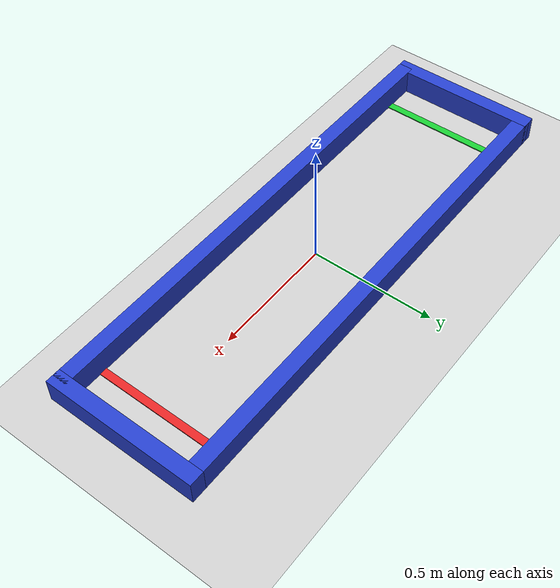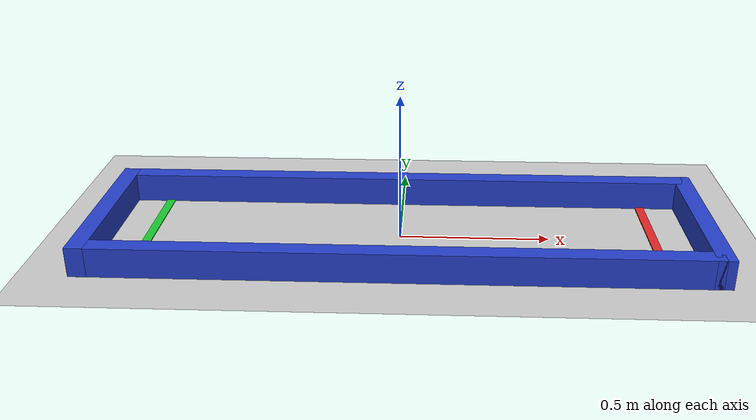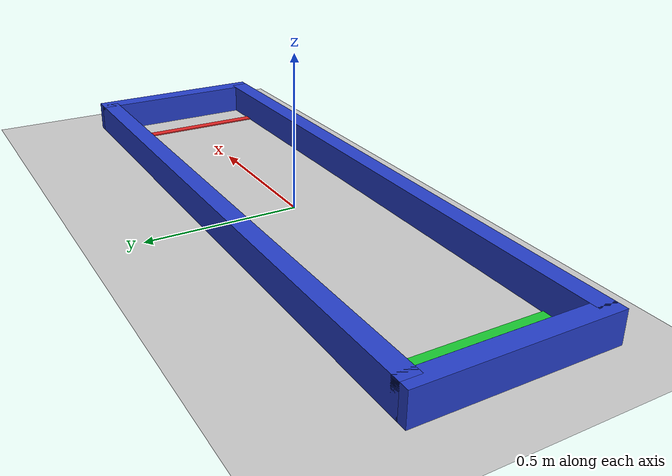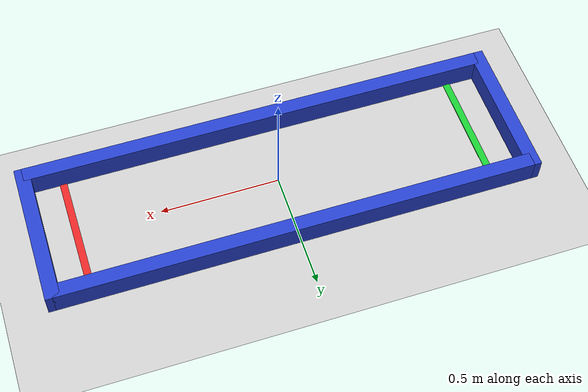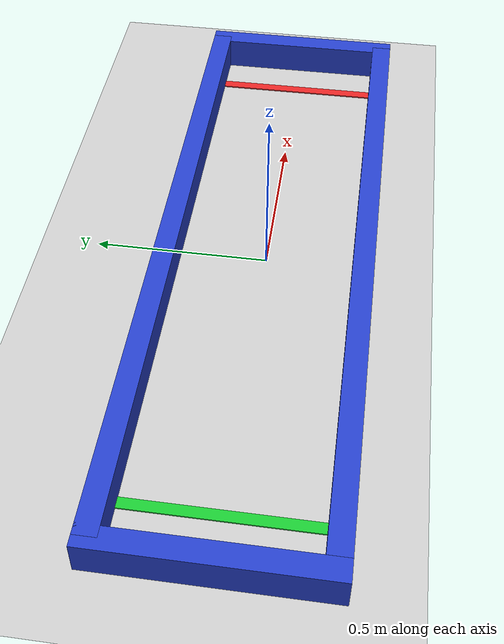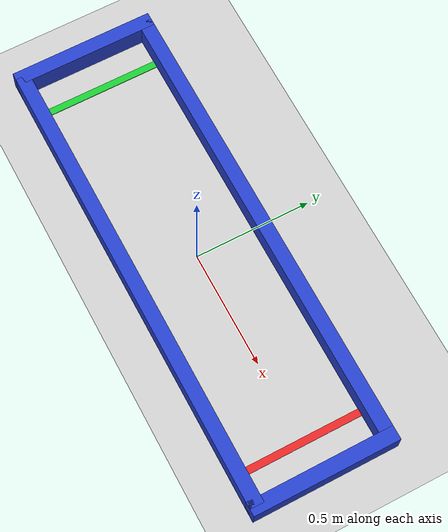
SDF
<?xml version="1.0" ?>
<!--
  Karel ROS
  Copyright (C) 2026 Julio Cruz
  SPDX-License-Identifier: GPL-3.0-only
-->
<sdf version="1.5">
  <world name="default">
    <gravity>0 0 -9.8</gravity>
    <physics type="ode">
      <real_time_update_rate>333.0</real_time_update_rate>
      <max_step_size>0.003</max_step_size>
      <ode>
        <solver>
          <type>quick</type>
          <iters>100</iters>
        </solver>
        <constraints>
          <cfm>0.0001</cfm>
        </constraints>
      </ode>
    </physics>
    <include>
      <uri>model://sun</uri>
    </include>
    <include>
      <uri>model://ground_plane</uri>
    </include>

    <model name="circuit_wall_left">
      <static>true</static>
      <pose>0 0.28 0.05 0 0 0</pose>
      <link name="link">
        <collision name="collision">
          <geometry><box><size>2.0 0.06 0.10</size></box></geometry>
        </collision>
        <visual name="visual">
          <geometry><box><size>2.0 0.06 0.10</size></box></geometry>
          <material><ambient>0.15 0.25 0.8 1</ambient><diffuse>0.15 0.25 0.8 1</diffuse></material>
        </visual>
      </link>
    </model>
    <model name="circuit_wall_right">
      <static>true</static>
      <pose>0 -0.28 0.05 0 0 0</pose>
      <link name="link">
        <collision name="collision">
          <geometry><box><size>2.0 0.06 0.10</size></box></geometry>
        </collision>
        <visual name="visual">
          <geometry><box><size>2.0 0.06 0.10</size></box></geometry>
          <material><ambient>0.15 0.25 0.8 1</ambient><diffuse>0.15 0.25 0.8 1</diffuse></material>
        </visual>
      </link>
    </model>
    <model name="circuit_wall_start">
      <static>true</static>
      <pose>-1.0 0 0.05 0 0 0</pose>
      <link name="link">
        <collision name="collision">
          <geometry><box><size>0.06 0.62 0.10</size></box></geometry>
        </collision>
        <visual name="visual">
          <geometry><box><size>0.06 0.62 0.10</size></box></geometry>
          <material><ambient>0.15 0.25 0.8 1</ambient><diffuse>0.15 0.25 0.8 1</diffuse></material>
        </visual>
      </link>
    </model>
    <model name="circuit_wall_goal">
      <static>true</static>
      <pose>1.0 0 0.05 0 0 0</pose>
      <link name="link">
        <collision name="collision">
          <geometry><box><size>0.06 0.62 0.10</size></box></geometry>
        </collision>
        <visual name="visual">
          <geometry><box><size>0.06 0.62 0.10</size></box></geometry>
          <material><ambient>0.15 0.25 0.8 1</ambient><diffuse>0.15 0.25 0.8 1</diffuse></material>
        </visual>
      </link>
    </model>

    <model name="circuit_start_marker">
      <static>true</static>
      <pose>-0.85 0 0.002 0 0 0</pose>
      <link name="link">
        <visual name="visual">
          <geometry><box><size>0.03 0.50 0.004</size></box></geometry>
          <material><ambient>0.1 0.8 0.2 1</ambient><diffuse>0.1 0.8 0.2 1</diffuse></material>
        </visual>
      </link>
    </model>
    <model name="circuit_goal_marker">
      <static>true</static>
      <pose>0.85 0 0.002 0 0 0</pose>
      <link name="link">
        <visual name="visual">
          <geometry><box><size>0.03 0.50 0.004</size></box></geometry>
          <material><ambient>0.9 0.15 0.15 1</ambient><diffuse>0.9 0.15 0.15 1</diffuse></material>
        </visual>
      </link>
    </model>
  </world>
</sdf>
